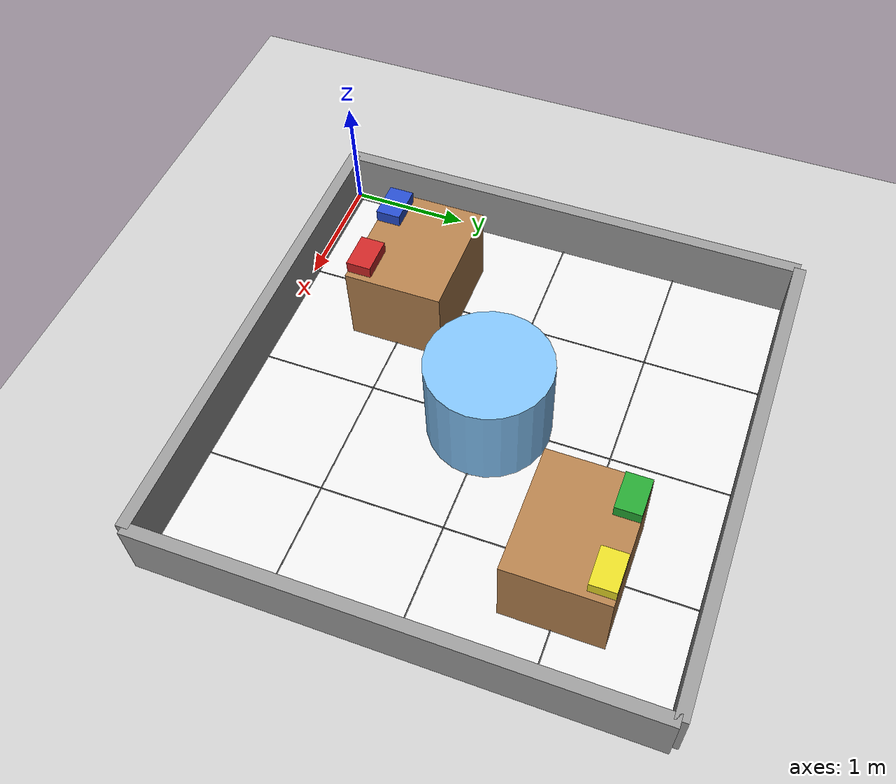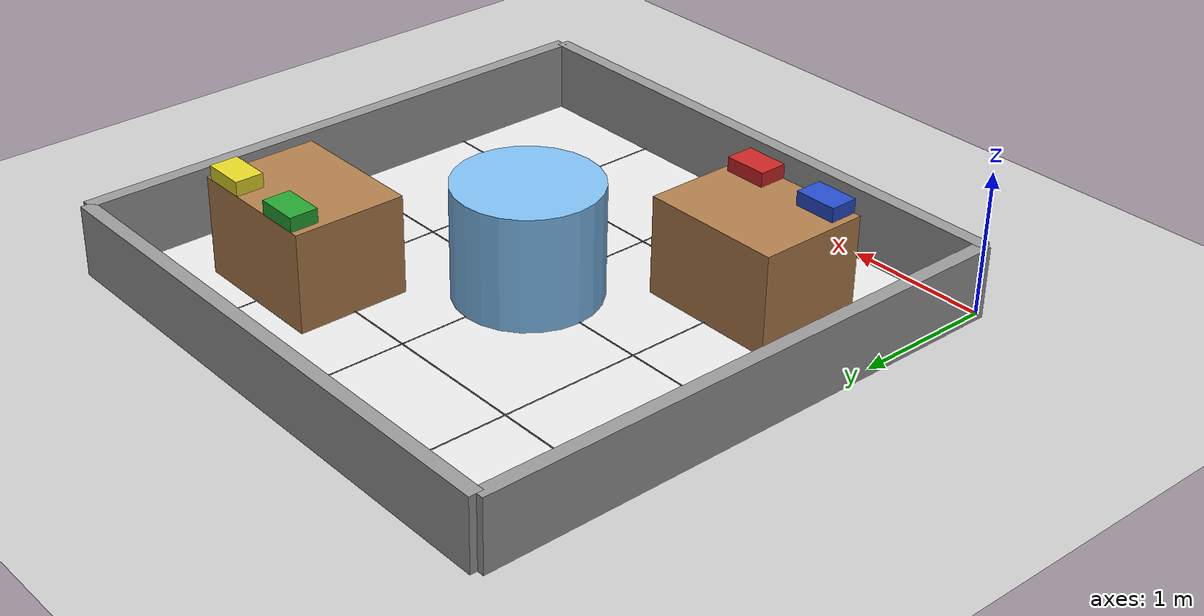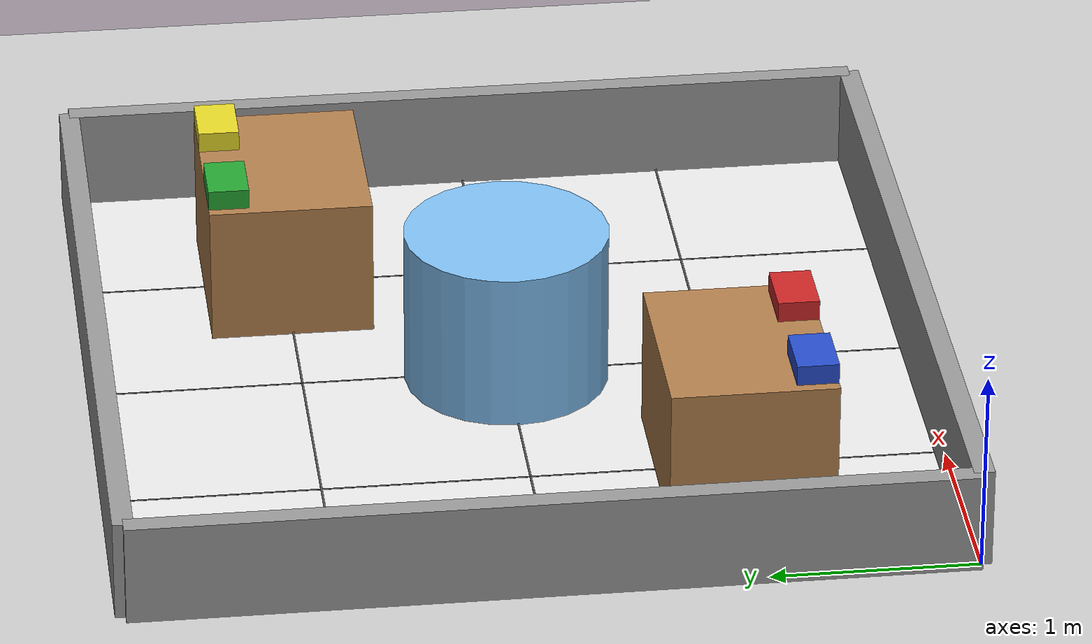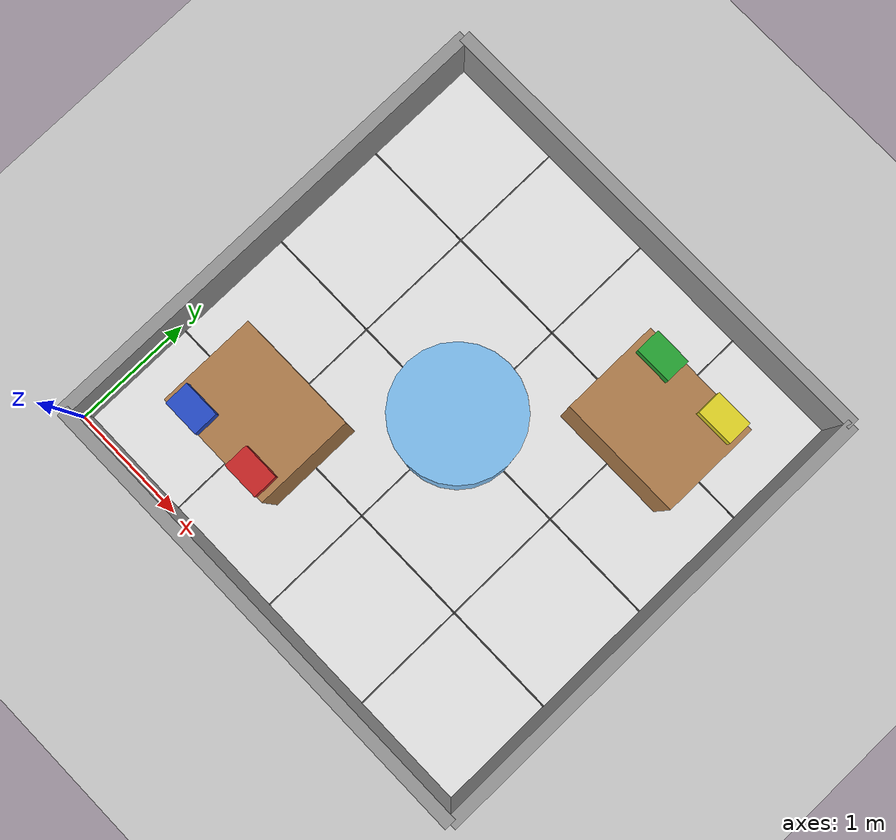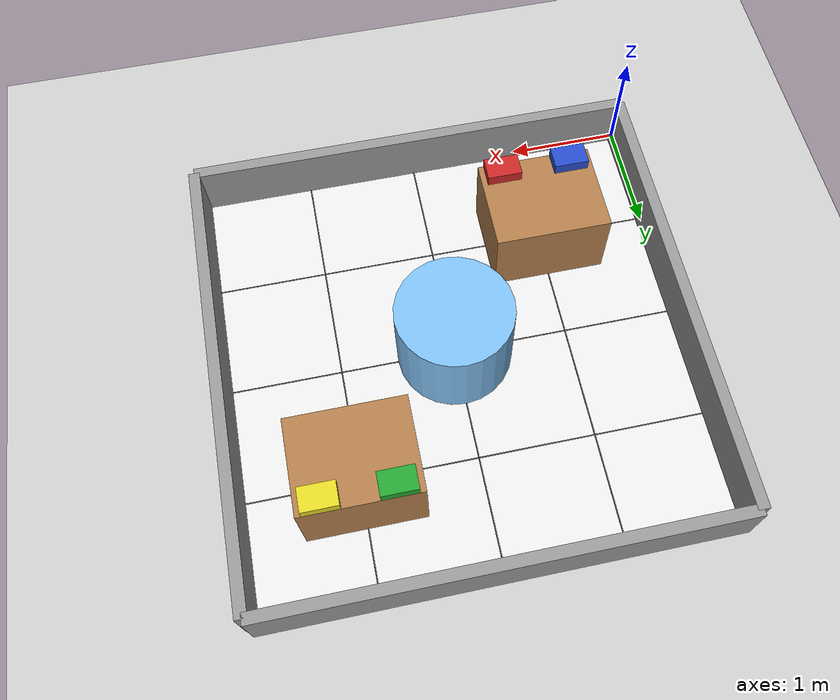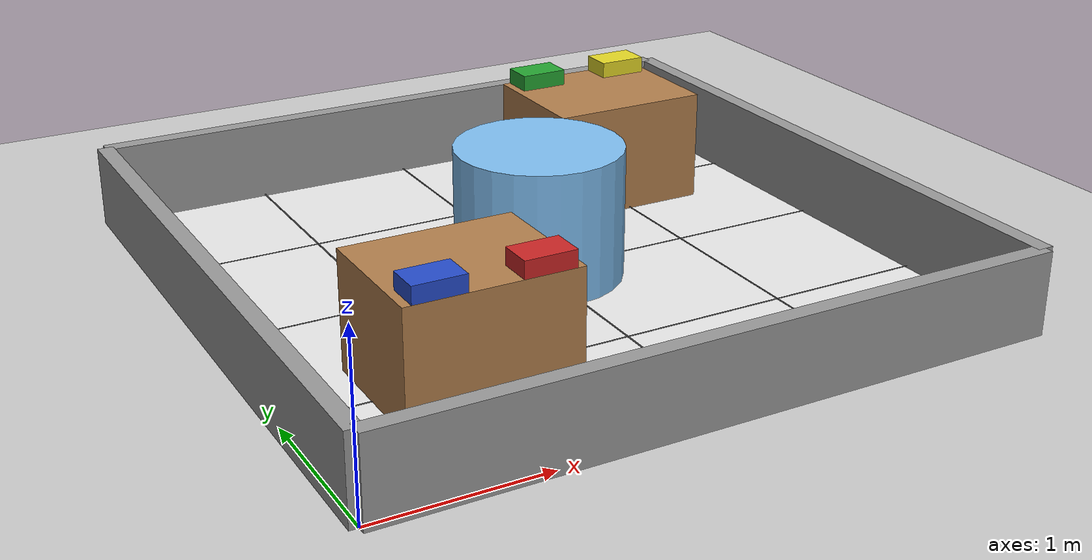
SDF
<sdf version="1.6">
 <world name="assembly_environment">
  <include><uri>model://sun</uri></include>
  <include><uri>model://ground_plane</uri></include>
  <physics type="ode">
   <real_time_update_rate>1000.0</real_time_update_rate>
   <max_step_size>0.001</max_step_size>
   <real_time_factor>1</real_time_factor>
   <ode>
    <solver>
     <type>quick</type>
     <iters>150</iters>
     <precon_iters>0</precon_iters>
     <sor>1.400000</sor>
     <use_dynamic_moi_rescaling>1</use_dynamic_moi_rescaling>
    </solver>
    <constraints>
     <cfm>0.00001</cfm>
     <erp>0.2</erp>
     <contact_max_correcting_vel>2000.000000</contact_max_correcting_vel>
     <contact_surface_layer>0.01000</contact_surface_layer>
    </constraints>
   </ode>
  </physics>
  <model name="assembly_workspace">
   <static>true</static>
   <link name="link">
    <collision name="collision"><geometry><box><size>4 4 0.01</size></box></geometry></collision>
    <visual name="visual">
     <geometry><box><size>4 4 0.01</size></box></geometry>
     <material>
      <script><uri>file://media/materials/scripts/gazebo.material</uri><name>Gazebo/White</name></script>
     </material>
    </visual>
   </link>
   <pose>2 2 0 0 0 0</pose>
  </model>
  <model name="assembly_table_1">
   <static>true</static>
   <link name="link">
    <collision name="collision"><geometry><box><size>1.0 0.8 0.7</size></box></geometry></collision>
    <visual name="visual">
     <geometry><box><size>1.0 0.8 0.7</size></box></geometry>
     <material>
      <script><uri>file://media/materials/scripts/gazebo.material</uri><name>Gazebo/Wood</name></script>
     </material>
    </visual>
   </link>
   <pose>1.0 1.0 0.35 0 0 0</pose>
  </model>
  <model name="assembly_table_2">
   <static>true</static>
   <link name="link">
    <collision name="collision"><geometry><box><size>1.0 0.8 0.7</size></box></geometry></collision>
    <visual name="visual">
     <geometry><box><size>1.0 0.8 0.7</size></box></geometry>
     <material>
      <script><uri>file://media/materials/scripts/gazebo.material</uri><name>Gazebo/Wood</name></script>
     </material>
    </visual>
   </link>
   <pose>3.0 3.0 0.35 0 0 0</pose>
  </model>
  <model name="collaborative_station">
   <static>true</static>
   <link name="link">
    <collision name="collision">
     <geometry><cylinder><radius>0.5</radius><length>0.8</length></cylinder></geometry>
    </collision>
    <visual name="visual">
     <geometry><cylinder><radius>0.5</radius><length>0.8</length></cylinder></geometry>
     <material>
      <script><uri>file://media/materials/scripts/gazebo.material</uri><name>Gazebo/SkyBlue</name></script>
     </material>
    </visual>
   </link>
   <pose>2.0 2.0 0.4 0 0 0</pose>
  </model>
  <model name="grid_lines">
   <static>true</static>
   <link name="link">
    <visual name="visual_x1">
     <pose>1 2 0.015 0 0 0</pose>
     <geometry><box><size>0.01 4 0.001</size></box></geometry>
     <material>
      <script><uri>file://media/materials/scripts/gazebo.material</uri><name>Gazebo/DarkGrey</name></script>
     </material>
    </visual>
    <visual name="visual_x2">
     <pose>2 2 0.015 0 0 0</pose>
     <geometry><box><size>0.01 4 0.001</size></box></geometry>
     <material>
      <script><uri>file://media/materials/scripts/gazebo.material</uri><name>Gazebo/DarkGrey</name></script>
     </material>
    </visual>
    <visual name="visual_x3">
     <pose>3 2 0.015 0 0 0</pose>
     <geometry><box><size>0.01 4 0.001</size></box></geometry>
     <material>
      <script><uri>file://media/materials/scripts/gazebo.material</uri><name>Gazebo/DarkGrey</name></script>
     </material>
    </visual>
    <visual name="visual_y1">
     <pose>2 1 0.015 0 0 0</pose>
     <geometry><box><size>4 0.01 0.001</size></box></geometry>
     <material>
      <script><uri>file://media/materials/scripts/gazebo.material</uri><name>Gazebo/DarkGrey</name></script>
     </material>
    </visual>
    <visual name="visual_y2">
     <pose>2 2 0.015 0 0 0</pose>
     <geometry><box><size>4 0.01 0.001</size></box></geometry>
     <material>
      <script><uri>file://media/materials/scripts/gazebo.material</uri><name>Gazebo/DarkGrey</name></script>
     </material>
    </visual>
    <visual name="visual_y3">
     <pose>2 3 0.015 0 0 0</pose>
     <geometry><box><size>4 0.01 0.001</size></box></geometry>
     <material>
      <script><uri>file://media/materials/scripts/gazebo.material</uri><name>Gazebo/DarkGrey</name></script>
     </material>
    </visual>
   </link>
  </model>
  <model name="parts_bin_1">
   <static>true</static>
   <link name="link">
    <collision name="collision"><geometry><box><size>0.3 0.2 0.1</size></box></geometry></collision>
    <visual name="visual">
     <geometry><box><size>0.3 0.2 0.1</size></box></geometry>
     <material>
      <script><uri>file://media/materials/scripts/gazebo.material</uri><name>Gazebo/Blue</name></script>
     </material>
    </visual>
   </link>
   <pose>0.7 0.7 0.75 0 0 0</pose>
  </model>
  <model name="parts_bin_2">
   <static>true</static>
   <link name="link">
    <collision name="collision"><geometry><box><size>0.3 0.2 0.1</size></box></geometry></collision>
    <visual name="visual">
     <geometry><box><size>0.3 0.2 0.1</size></box></geometry>
     <material>
      <script><uri>file://media/materials/scripts/gazebo.material</uri><name>Gazebo/Red</name></script>
     </material>
    </visual>
   </link>
   <pose>1.3 0.7 0.75 0 0 0</pose>
  </model>
  <model name="parts_bin_3">
   <static>true</static>
   <link name="link">
    <collision name="collision"><geometry><box><size>0.3 0.2 0.1</size></box></geometry></collision>
    <visual name="visual">
     <geometry><box><size>0.3 0.2 0.1</size></box></geometry>
     <material>
      <script><uri>file://media/materials/scripts/gazebo.material</uri><name>Gazebo/Green</name></script>
     </material>
    </visual>
   </link>
   <pose>2.7 3.3 0.75 0 0 0</pose>
  </model>
  <model name="parts_bin_4">
   <static>true</static>
   <link name="link">
    <collision name="collision"><geometry><box><size>0.3 0.2 0.1</size></box></geometry></collision>
    <visual name="visual">
     <geometry><box><size>0.3 0.2 0.1</size></box></geometry>
     <material>
      <script><uri>file://media/materials/scripts/gazebo.material</uri><name>Gazebo/Yellow</name></script>
     </material>
    </visual>
   </link>
   <pose>3.3 3.3 0.75 0 0 0</pose>
  </model>
  <model name="boundary_wall_1">
   <static>true</static>
   <link name="link">
    <collision name="collision"><geometry><box><size>4.0 0.1 0.5</size></box></geometry></collision>
    <visual name="visual">
     <geometry><box><size>4.0 0.1 0.5</size></box></geometry>
     <material>
      <script><uri>file://media/materials/scripts/gazebo.material</uri><name>Gazebo/Grey</name></script>
     </material>
    </visual>
   </link>
   <pose>2.0 0.0 0.25 0 0 0</pose>
  </model>
  <model name="boundary_wall_2">
   <static>true</static>
   <link name="link">
    <collision name="collision"><geometry><box><size>4.0 0.1 0.5</size></box></geometry></collision>
    <visual name="visual">
     <geometry><box><size>4.0 0.1 0.5</size></box></geometry>
     <material>
      <script><uri>file://media/materials/scripts/gazebo.material</uri><name>Gazebo/Grey</name></script>
     </material>
    </visual>
   </link>
   <pose>2.0 4.0 0.25 0 0 0</pose>
  </model>
  <model name="boundary_wall_3">
   <static>true</static>
   <link name="link">
    <collision name="collision"><geometry><box><size>0.1 4.0 0.5</size></box></geometry></collision>
    <visual name="visual">
     <geometry><box><size>0.1 4.0 0.5</size></box></geometry>
     <material>
      <script><uri>file://media/materials/scripts/gazebo.material</uri><name>Gazebo/Grey</name></script>
     </material>
    </visual>
   </link>
   <pose>0.0 2.0 0.25 0 0 0</pose>
  </model>
  <model name="boundary_wall_4">
   <static>true</static>
   <link name="link">
    <collision name="collision"><geometry><box><size>0.1 4.0 0.5</size></box></geometry></collision>
    <visual name="visual">
     <geometry><box><size>0.1 4.0 0.5</size></box></geometry>
     <material>
      <script><uri>file://media/materials/scripts/gazebo.material</uri><name>Gazebo/Grey</name></script>
     </material>
    </visual>
   </link>
   <pose>4.0 2.0 0.25 0 0 0</pose>
  </model>
  <light name="point_light_1" type="point">
   <pose>1.0 1.0 2.0 0 0 0</pose>
   <diffuse>0.5 0.5 0.5 1</diffuse>
   <specular>0.1 0.1 0.1 1</specular>
   <attenuation>
    <range>20</range>
    <constant>0.5</constant>
    <linear>0.01</linear>
    <quadratic>0.001</quadratic>
   </attenuation>
   <cast_shadows>false</cast_shadows>
  </light>
  <light name="point_light_2" type="point">
   <pose>3.0 3.0 2.0 0 0 0</pose>
   <diffuse>0.5 0.5 0.5 1</diffuse>
   <specular>0.1 0.1 0.1 1</specular>
   <attenuation>
    <range>20</range>
    <constant>0.5</constant>
    <linear>0.01</linear>
    <quadratic>0.001</quadratic>
   </attenuation>
   <cast_shadows>false</cast_shadows>
  </light>
 </world>
</sdf>
